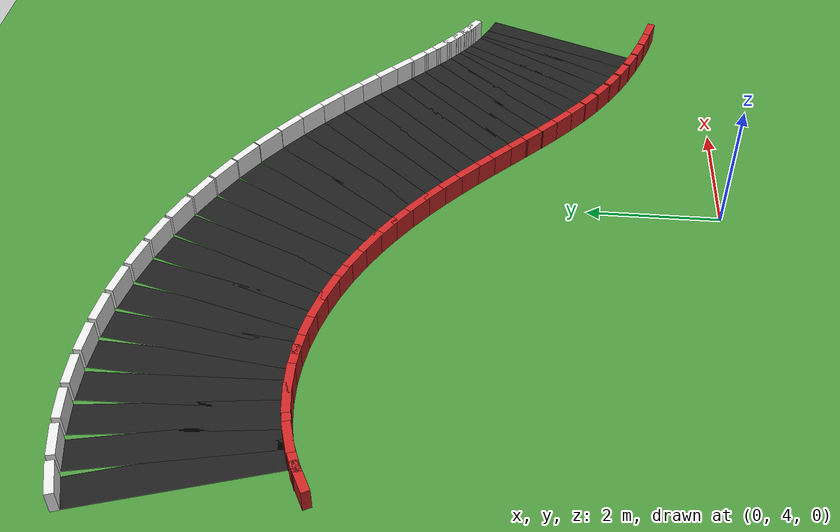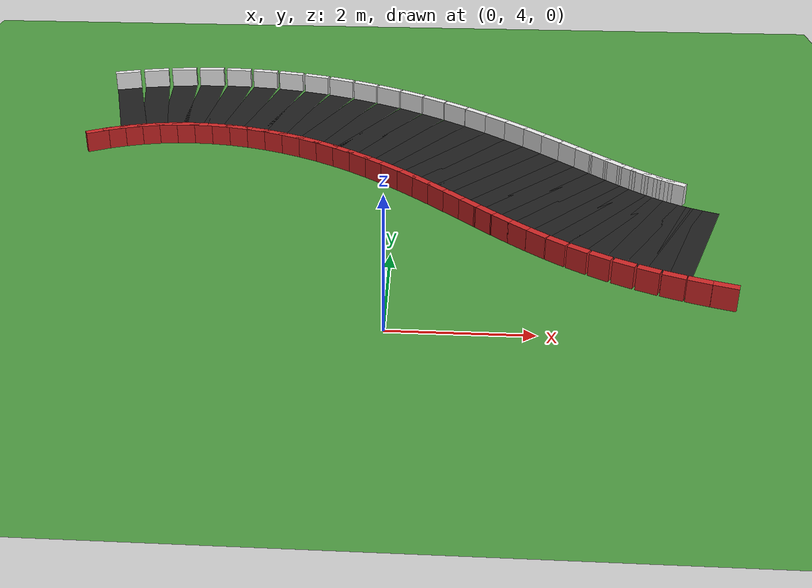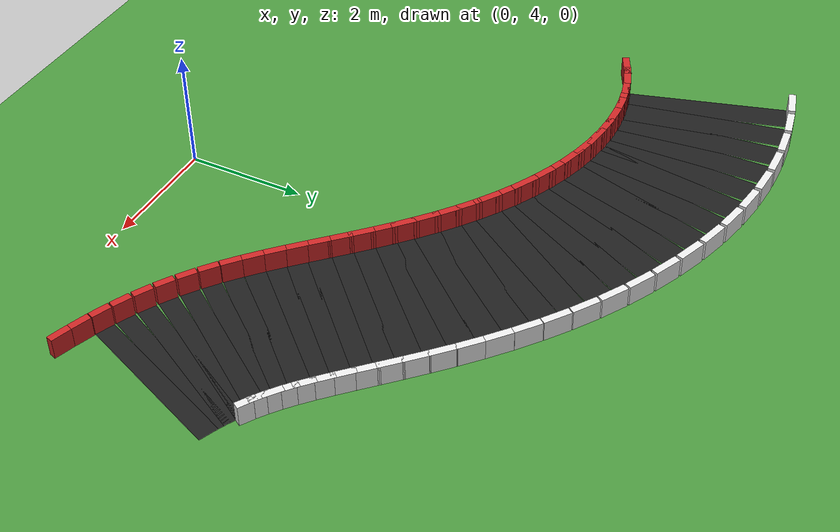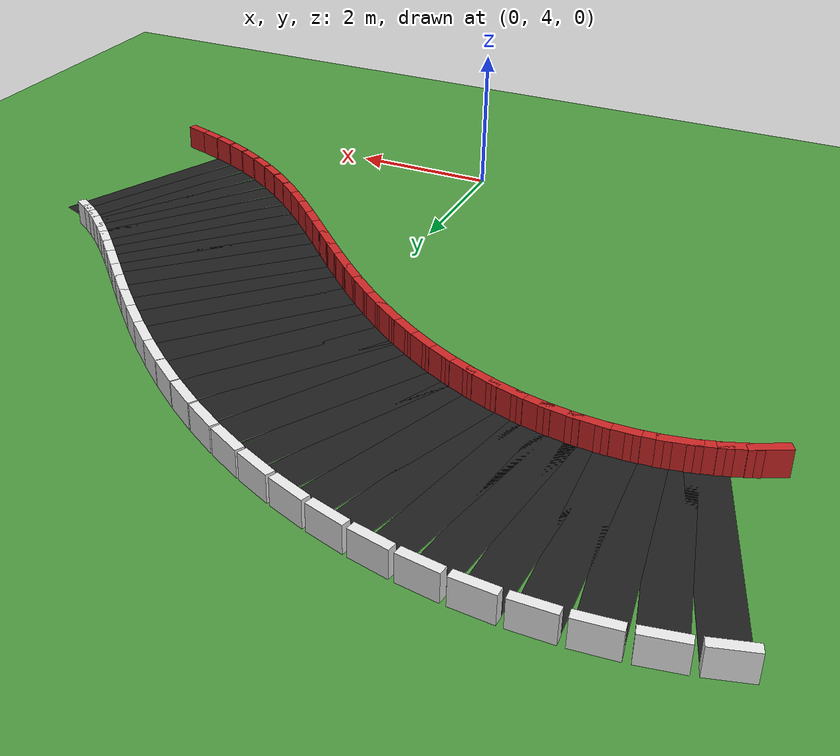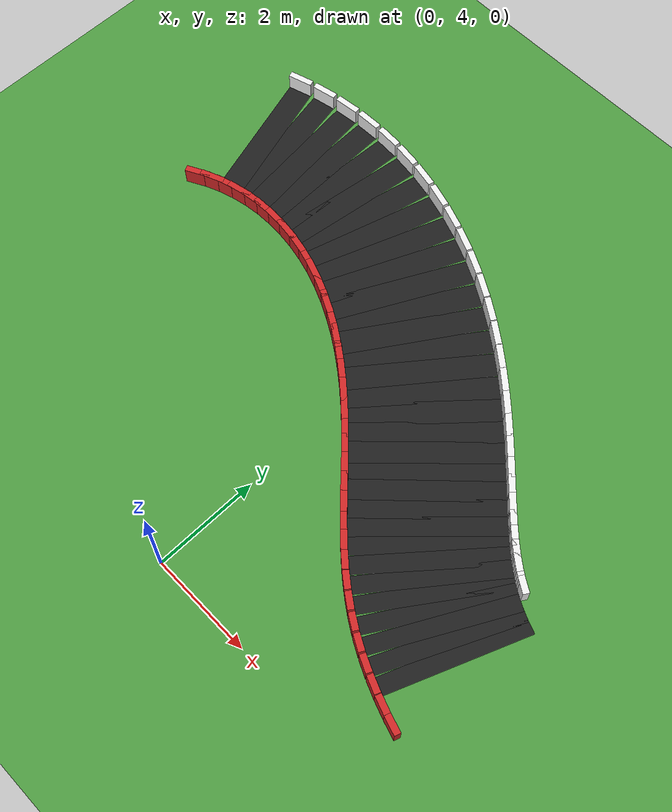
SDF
<sdf version="1.7">
 <world name="rl_track">
  <include><uri>model://sun</uri></include>
  <model name="ground">
   <static>true</static>
   <link name="link">
    <collision name="collision">
     <geometry><plane><normal>0 0 1</normal><size>40 40</size></plane></geometry>
    </collision>
    <visual name="visual">
     <geometry><plane><normal>0 0 1</normal><size>40 40</size></plane></geometry>
     <material>
      <script><uri>file://media/materials/scripts/gazebo.material</uri><name>Gazebo/Grass</name></script>
     </material>
    </visual>
   </link>
  </model>
  <model name="track">
   <static>true</static>
   <link name="outer_wall_025">
    <pose>4.580960 4.834843 0.175000 0 0 2.835922841</pose>
    <collision name="collision">
     <geometry><box><size>0.348349 0.120000 0.350000</size></box></geometry>
     <surface><contact><ode><kp>1000000</kp><kd>10</kd></ode></contact></surface>
    </collision>
    <visual name="visual">
     <geometry><box><size>0.348349 0.120000 0.350000</size></box></geometry>
     <material>
      <script><uri>file://media/materials/scripts/gazebo.material</uri><name>Gazebo/Red</name></script>
     </material>
    </visual>
   </link>
   <link name="outer_wall_026">
    <pose>4.256044 4.943616 0.175000 0 0 2.800612221</pose>
    <collision name="collision">
     <geometry><box><size>0.337451 0.120000 0.350000</size></box></geometry>
     <surface><contact><ode><kp>1000000</kp><kd>10</kd></ode></contact></surface>
    </collision>
    <visual name="visual">
     <geometry><box><size>0.337451 0.120000 0.350000</size></box></geometry>
     <material>
      <script><uri>file://media/materials/scripts/gazebo.material</uri><name>Gazebo/Red</name></script>
     </material>
    </visual>
   </link>
   <link name="road_027">
    <pose>4.463002 6.372880 0.003000 0 0 2.756201164</pose>
    <visual name="visual">
     <geometry><box><size>0.318662 2.700000 0.006000</size></box></geometry>
     <material>
      <script><uri>file://media/materials/scripts/gazebo.material</uri><name>Gazebo/Black</name></script>
     </material>
    </visual>
   </link>
   <link name="outer_wall_027">
    <pose>3.932952 5.066301 0.175000 0 0 2.756201164</pose>
    <collision name="collision">
     <geometry><box><size>0.328662 0.120000 0.350000</size></box></geometry>
     <surface><contact><ode><kp>1000000</kp><kd>10</kd></ode></contact></surface>
    </collision>
    <visual name="visual">
     <geometry><box><size>0.328662 0.120000 0.350000</size></box></geometry>
     <material>
      <script><uri>file://media/materials/scripts/gazebo.material</uri><name>Gazebo/Red</name></script>
     </material>
    </visual>
   </link>
   <link name="road_028">
    <pose>4.210473 6.482956 0.003000 0 0 2.704272586</pose>
    <visual name="visual">
     <geometry><box><size>0.312479 2.700000 0.006000</size></box></geometry>
     <material>
      <script><uri>file://media/materials/scripts/gazebo.material</uri><name>Gazebo/Black</name></script>
     </material>
    </visual>
   </link>
   <link name="outer_wall_028">
    <pose>3.613319 5.205652 0.175000 0 0 2.704272586</pose>
    <collision name="collision">
     <geometry><box><size>0.322479 0.120000 0.350000</size></box></geometry>
     <surface><contact><ode><kp>1000000</kp><kd>10</kd></ode></contact></surface>
    </collision>
    <visual name="visual">
     <geometry><box><size>0.322479 0.120000 0.350000</size></box></geometry>
     <material>
      <script><uri>file://media/materials/scripts/gazebo.material</uri><name>Gazebo/Red</name></script>
     </material>
    </visual>
   </link>
   <link name="road_029">
    <pose>3.968528 6.604526 0.003000 0 0 2.647340339</pose>
    <visual name="visual">
     <geometry><box><size>0.309282 2.700000 0.006000</size></box></geometry>
     <material>
      <script><uri>file://media/materials/scripts/gazebo.material</uri><name>Gazebo/Black</name></script>
     </material>
    </visual>
   </link>
   <link name="outer_wall_029">
    <pose>3.299661 5.363269 0.175000 0 0 2.647340339</pose>
    <collision name="collision">
     <geometry><box><size>0.319282 0.120000 0.350000</size></box></geometry>
     <surface><contact><ode><kp>1000000</kp><kd>10</kd></ode></contact></surface>
    </collision>
    <visual name="visual">
     <geometry><box><size>0.319282 0.120000 0.350000</size></box></geometry>
     <material>
      <script><uri>file://media/materials/scripts/gazebo.material</uri><name>Gazebo/Red</name></script>
     </material>
    </visual>
   </link>
   <link name="road_030">
    <pose>3.735423 6.739108 0.003000 0 0 2.588647417</pose>
    <visual name="visual">
     <geometry><box><size>0.309282 2.700000 0.006000</size></box></geometry>
     <material>
      <script><uri>file://media/materials/scripts/gazebo.material</uri><name>Gazebo/Black</name></script>
     </material>
    </visual>
   </link>
   <link name="inner_wall_030">
    <pose>4.475949 7.938992 0.175000 0 0 2.588647417</pose>
    <collision name="collision">
     <geometry><box><size>0.319282 0.120000 0.350000</size></box></geometry>
     <surface><contact><ode><kp>1000000</kp><kd>10</kd></ode></contact></surface>
    </collision>
    <visual name="visual">
     <geometry><box><size>0.319282 0.120000 0.350000</size></box></geometry>
     <material>
      <script><uri>file://media/materials/scripts/gazebo.material</uri><name>Gazebo/White</name></script>
     </material>
    </visual>
   </link>
   <link name="outer_wall_030">
    <pose>2.994897 5.539225 0.175000 0 0 2.588647417</pose>
    <collision name="collision">
     <geometry><box><size>0.319282 0.120000 0.350000</size></box></geometry>
     <surface><contact><ode><kp>1000000</kp><kd>10</kd></ode></contact></surface>
    </collision>
    <visual name="visual">
     <geometry><box><size>0.319282 0.120000 0.350000</size></box></geometry>
     <material>
      <script><uri>file://media/materials/scripts/gazebo.material</uri><name>Gazebo/Red</name></script>
     </material>
    </visual>
   </link>
   <link name="road_031">
    <pose>3.509168 6.887855 0.003000 0 0 2.531715170</pose>
    <visual name="visual">
     <geometry><box><size>0.312479 2.700000 0.006000</size></box></geometry>
     <material>
      <script><uri>file://media/materials/scripts/gazebo.material</uri><name>Gazebo/Black</name></script>
     </material>
    </visual>
   </link>
   <link name="inner_wall_031">
    <pose>4.316770 8.043657 0.175000 0 0 2.531715170</pose>
    <collision name="collision">
     <geometry><box><size>0.322479 0.120000 0.350000</size></box></geometry>
     <surface><contact><ode><kp>1000000</kp><kd>10</kd></ode></contact></surface>
    </collision>
    <visual name="visual">
     <geometry><box><size>0.322479 0.120000 0.350000</size></box></geometry>
     <material>
      <script><uri>file://media/materials/scripts/gazebo.material</uri><name>Gazebo/White</name></script>
     </material>
    </visual>
   </link>
   <link name="outer_wall_031">
    <pose>2.701567 5.732052 0.175000 0 0 2.531715170</pose>
    <collision name="collision">
     <geometry><box><size>0.322479 0.120000 0.350000</size></box></geometry>
     <surface><contact><ode><kp>1000000</kp><kd>10</kd></ode></contact></surface>
    </collision>
    <visual name="visual">
     <geometry><box><size>0.322479 0.120000 0.350000</size></box></geometry>
     <material>
      <script><uri>file://media/materials/scripts/gazebo.material</uri><name>Gazebo/Red</name></script>
     </material>
    </visual>
   </link>
   <link name="road_032">
    <pose>3.287575 7.051513 0.003000 0 0 2.479786592</pose>
    <visual name="visual">
     <geometry><box><size>0.318662 2.700000 0.006000</size></box></geometry>
     <material>
      <script><uri>file://media/materials/scripts/gazebo.material</uri><name>Gazebo/Black</name></script>
     </material>
    </visual>
   </link>
   <link name="inner_wall_032">
    <pose>4.154080 8.163839 0.175000 0 0 2.479786592</pose>
    <collision name="collision">
     <geometry><box><size>0.328662 0.120000 0.350000</size></box></geometry>
     <surface><contact><ode><kp>1000000</kp><kd>10</kd></ode></contact></surface>
    </collision>
    <visual name="visual">
     <geometry><box><size>0.328662 0.120000 0.350000</size></box></geometry>
     <material>
      <script><uri>file://media/materials/scripts/gazebo.material</uri><name>Gazebo/White</name></script>
     </material>
    </visual>
   </link>
   <link name="outer_wall_032">
    <pose>2.421069 5.939187 0.175000 0 0 2.479786592</pose>
    <collision name="collision">
     <geometry><box><size>0.328662 0.120000 0.350000</size></box></geometry>
     <surface><contact><ode><kp>1000000</kp><kd>10</kd></ode></contact></surface>
    </collision>
    <visual name="visual">
     <geometry><box><size>0.328662 0.120000 0.350000</size></box></geometry>
     <material>
      <script><uri>file://media/materials/scripts/gazebo.material</uri><name>Gazebo/Red</name></script>
     </material>
    </visual>
   </link>
   <link name="road_033">
    <pose>3.068309 7.230410 0.003000 0 0 2.435375534</pose>
    <visual name="visual">
     <geometry><box><size>0.327451 2.700000 0.006000</size></box></geometry>
     <material>
      <script><uri>file://media/materials/scripts/gazebo.material</uri><name>Gazebo/Black</name></script>
     </material>
    </visual>
   </link>
   <link name="inner_wall_033">
    <pose>3.983343 8.303169 0.175000 0 0 2.435375534</pose>
    <collision name="collision">
     <geometry><box><size>0.337451 0.120000 0.350000</size></box></geometry>
     <surface><contact><ode><kp>1000000</kp><kd>10</kd></ode></contact></surface>
    </collision>
    <visual name="visual">
     <geometry><box><size>0.337451 0.120000 0.350000</size></box></geometry>
     <material>
      <script><uri>file://media/materials/scripts/gazebo.material</uri><name>Gazebo/White</name></script>
     </material>
    </visual>
   </link>
   <link name="outer_wall_033">
    <pose>2.153275 6.157651 0.175000 0 0 2.435375534</pose>
    <collision name="collision">
     <geometry><box><size>0.337451 0.120000 0.350000</size></box></geometry>
     <surface><contact><ode><kp>1000000</kp><kd>10</kd></ode></contact></surface>
    </collision>
    <visual name="visual">
     <geometry><box><size>0.337451 0.120000 0.350000</size></box></geometry>
     <material>
      <script><uri>file://media/materials/scripts/gazebo.material</uri><name>Gazebo/Red</name></script>
     </material>
    </visual>
   </link>
   <link name="road_034">
    <pose>2.848953 7.424437 0.003000 0 0 2.400064915</pose>
    <visual name="visual">
     <geometry><box><size>0.338349 2.700000 0.006000</size></box></geometry>
     <material>
      <script><uri>file://media/materials/scripts/gazebo.material</uri><name>Gazebo/Black</name></script>
     </material>
    </visual>
   </link>
   <link name="inner_wall_034">
    <pose>3.801288 8.464224 0.175000 0 0 2.400064915</pose>
    <collision name="collision">
     <geometry><box><size>0.348349 0.120000 0.350000</size></box></geometry>
     <surface><contact><ode><kp>1000000</kp><kd>10</kd></ode></contact></surface>
    </collision>
    <visual name="visual">
     <geometry><box><size>0.348349 0.120000 0.350000</size></box></geometry>
     <material>
      <script><uri>file://media/materials/scripts/gazebo.material</uri><name>Gazebo/White</name></script>
     </material>
    </visual>
   </link>
   <link name="outer_wall_034">
    <pose>1.896617 6.384650 0.175000 0 0 2.400064915</pose>
    <collision name="collision">
     <geometry><box><size>0.348349 0.120000 0.350000</size></box></geometry>
     <surface><contact><ode><kp>1000000</kp><kd>10</kd></ode></contact></surface>
    </collision>
    <visual name="visual">
     <geometry><box><size>0.348349 0.120000 0.350000</size></box></geometry>
     <material>
      <script><uri>file://media/materials/scripts/gazebo.material</uri><name>Gazebo/Red</name></script>
     </material>
    </visual>
   </link>
   <link name="road_035">
    <pose>2.627058 7.633044 0.003000 0 0 2.374555425</pose>
    <visual name="visual">
     <geometry><box><size>0.350813 2.700000 0.006000</size></box></geometry>
     <material>
      <script><uri>file://media/materials/scripts/gazebo.material</uri><name>Gazebo/Black</name></script>
     </material>
    </visual>
   </link>
   <link name="inner_wall_035">
    <pose>3.605605 8.648202 0.175000 0 0 2.374555425</pose>
    <collision name="collision">
     <geometry><box><size>0.360813 0.120000 0.350000</size></box></geometry>
     <surface><contact><ode><kp>1000000</kp><kd>10</kd></ode></contact></surface>
    </collision>
    <visual name="visual">
     <geometry><box><size>0.360813 0.120000 0.350000</size></box></geometry>
     <material>
      <script><uri>file://media/materials/scripts/gazebo.material</uri><name>Gazebo/White</name></script>
     </material>
    </visual>
   </link>
   <link name="outer_wall_035">
    <pose>1.648511 6.617887 0.175000 0 0 2.374555425</pose>
    <collision name="collision">
     <geometry><box><size>0.360813 0.120000 0.350000</size></box></geometry>
     <surface><contact><ode><kp>1000000</kp><kd>10</kd></ode></contact></surface>
    </collision>
    <visual name="visual">
     <geometry><box><size>0.360813 0.120000 0.350000</size></box></geometry>
     <material>
      <script><uri>file://media/materials/scripts/gazebo.material</uri><name>Gazebo/Red</name></script>
     </material>
    </visual>
   </link>
   <link name="road_036">
    <pose>2.400208 7.855247 0.003000 0 0 2.358866287</pose>
    <visual name="visual">
     <geometry><box><size>0.364298 2.700000 0.006000</size></box></geometry>
     <material>
      <script><uri>file://media/materials/scripts/gazebo.material</uri><name>Gazebo/Black</name></script>
     </material>
    </visual>
   </link>
   <link name="inner_wall_036">
    <pose>3.394561 8.854928 0.175000 0 0 2.358866287</pose>
    <collision name="collision">
     <geometry><box><size>0.374298 0.120000 0.350000</size></box></geometry>
     <surface><contact><ode><kp>1000000</kp><kd>10</kd></ode></contact></surface>
    </collision>
    <visual name="visual">
     <geometry><box><size>0.374298 0.120000 0.350000</size></box></geometry>
     <material>
      <script><uri>file://media/materials/scripts/gazebo.material</uri><name>Gazebo/White</name></script>
     </material>
    </visual>
   </link>
   <link name="outer_wall_036">
    <pose>1.405854 6.855566 0.175000 0 0 2.358866287</pose>
    <collision name="collision">
     <geometry><box><size>0.374298 0.120000 0.350000</size></box></geometry>
     <surface><contact><ode><kp>1000000</kp><kd>10</kd></ode></contact></surface>
    </collision>
    <visual name="visual">
     <geometry><box><size>0.374298 0.120000 0.350000</size></box></geometry>
     <material>
      <script><uri>file://media/materials/scripts/gazebo.material</uri><name>Gazebo/Red</name></script>
     </material>
    </visual>
   </link>
   <link name="road_037">
    <pose>2.166073 8.089634 0.003000 0 0 2.352576127</pose>
    <visual name="visual">
     <geometry><box><size>0.378296 2.700000 0.006000</size></box></geometry>
     <material>
      <script><uri>file://media/materials/scripts/gazebo.material</uri><name>Gazebo/Black</name></script>
     </material>
    </visual>
   </link>
   <link name="inner_wall_037">
    <pose>3.166695 9.083041 0.175000 0 0 2.352576127</pose>
    <collision name="collision">
     <geometry><box><size>0.388296 0.120000 0.350000</size></box></geometry>
     <surface><contact><ode><kp>1000000</kp><kd>10</kd></ode></contact></surface>
    </collision>
    <visual name="visual">
     <geometry><box><size>0.388296 0.120000 0.350000</size></box></geometry>
     <material>
      <script><uri>file://media/materials/scripts/gazebo.material</uri><name>Gazebo/White</name></script>
     </material>
    </visual>
   </link>
   <link name="outer_wall_037">
    <pose>1.165451 7.096228 0.175000 0 0 2.352576127</pose>
    <collision name="collision">
     <geometry><box><size>0.388296 0.120000 0.350000</size></box></geometry>
     <surface><contact><ode><kp>1000000</kp><kd>10</kd></ode></contact></surface>
    </collision>
    <visual name="visual">
     <geometry><box><size>0.388296 0.120000 0.350000</size></box></geometry>
     <material>
      <script><uri>file://media/materials/scripts/gazebo.material</uri><name>Gazebo/Red</name></script>
     </material>
    </visual>
   </link>
   <link name="road_038">
    <pose>1.922470 8.334392 0.003000 0 0 2.355031887</pose>
    <visual name="visual">
     <geometry><box><size>0.392353 2.700000 0.006000</size></box></geometry>
     <material>
      <script><uri>file://media/materials/scripts/gazebo.material</uri><name>Gazebo/Black</name></script>
     </material>
    </visual>
   </link>
   <link name="inner_wall_038">
    <pose>2.920649 9.330253 0.175000 0 0 2.355031887</pose>
    <collision name="collision">
     <geometry><box><size>0.402353 0.120000 0.350000</size></box></geometry>
     <surface><contact><ode><kp>1000000</kp><kd>10</kd></ode></contact></surface>
    </collision>
    <visual name="visual">
     <geometry><box><size>0.402353 0.120000 0.350000</size></box></geometry>
     <material>
      <script><uri>file://media/materials/scripts/gazebo.material</uri><name>Gazebo/White</name></script>
     </material>
    </visual>
   </link>
   <link name="outer_wall_038">
    <pose>0.924291 7.338531 0.175000 0 0 2.355031887</pose>
    <collision name="collision">
     <geometry><box><size>0.402353 0.120000 0.350000</size></box></geometry>
     <surface><contact><ode><kp>1000000</kp><kd>10</kd></ode></contact></surface>
    </collision>
    <visual name="visual">
     <geometry><box><size>0.402353 0.120000 0.350000</size></box></geometry>
     <material>
      <script><uri>file://media/materials/scripts/gazebo.material</uri><name>Gazebo/Red</name></script>
     </material>
    </visual>
   </link>
   <link name="road_039">
    <pose>1.667413 8.587330 0.003000 0 0 2.365499334</pose>
    <visual name="visual">
     <geometry><box><size>0.406078 2.700000 0.006000</size></box></geometry>
     <material>
      <script><uri>file://media/materials/scripts/gazebo.material</uri><name>Gazebo/Black</name></script>
     </material>
    </visual>
   </link>
   <link name="inner_wall_039">
    <pose>2.655114 9.593585 0.175000 0 0 2.365499334</pose>
    <collision name="collision">
     <geometry><box><size>0.416078 0.120000 0.350000</size></box></geometry>
     <surface><contact><ode><kp>1000000</kp><kd>10</kd></ode></contact></surface>
    </collision>
    <visual name="visual">
     <geometry><box><size>0.416078 0.120000 0.350000</size></box></geometry>
     <material>
      <script><uri>file://media/materials/scripts/gazebo.material</uri><name>Gazebo/White</name></script>
     </material>
    </visual>
   </link>
   <link name="outer_wall_039">
    <pose>0.679713 7.581076 0.175000 0 0 2.365499334</pose>
    <collision name="collision">
     <geometry><box><size>0.416078 0.120000 0.350000</size></box></geometry>
     <surface><contact><ode><kp>1000000</kp><kd>10</kd></ode></contact></surface>
    </collision>
    <visual name="visual">
     <geometry><box><size>0.416078 0.120000 0.350000</size></box></geometry>
     <material>
      <script><uri>file://media/materials/scripts/gazebo.material</uri><name>Gazebo/Red</name></script>
     </material>
    </visual>
   </link>
   <link name="road_040">
    <pose>1.399161 8.845920 0.003000 0 0 2.383257346</pose>
    <visual name="visual">
     <geometry><box><size>0.419143 2.700000 0.006000</size></box></geometry>
     <material>
      <script><uri>file://media/materials/scripts/gazebo.material</uri><name>Gazebo/Black</name></script>
     </material>
    </visual>
   </link>
   <link name="inner_wall_040">
    <pose>2.368837 9.869554 0.175000 0 0 2.383257346</pose>
    <collision name="collision">
     <geometry><box><size>0.429143 0.120000 0.350000</size></box></geometry>
     <surface><contact><ode><kp>1000000</kp><kd>10</kd></ode></contact></surface>
    </collision>
    <visual name="visual">
     <geometry><box><size>0.429143 0.120000 0.350000</size></box></geometry>
     <material>
      <script><uri>file://media/materials/scripts/gazebo.material</uri><name>Gazebo/White</name></script>
     </material>
    </visual>
   </link>
   <link name="outer_wall_040">
    <pose>0.429484 7.822285 0.175000 0 0 2.383257346</pose>
    <collision name="collision">
     <geometry><box><size>0.429143 0.120000 0.350000</size></box></geometry>
     <surface><contact><ode><kp>1000000</kp><kd>10</kd></ode></contact></surface>
    </collision>
    <visual name="visual">
     <geometry><box><size>0.429143 0.120000 0.350000</size></box></geometry>
     <material>
      <script><uri>file://media/materials/scripts/gazebo.material</uri><name>Gazebo/Red</name></script>
     </material>
    </visual>
   </link>
   <link name="road_041">
    <pose>1.116264 9.107332 0.003000 0 0 2.407649335</pose>
    <visual name="visual">
     <geometry><box><size>0.431283 2.700000 0.006000</size></box></geometry>
     <material>
      <script><uri>file://media/materials/scripts/gazebo.material</uri><name>Gazebo/Black</name></script>
     </material>
    </visual>
   </link>
   <link name="inner_wall_041">
    <pose>2.060686 10.154312 0.175000 0 0 2.407649335</pose>
    <collision name="collision">
     <geometry><box><size>0.441283 0.120000 0.350000</size></box></geometry>
     <surface><contact><ode><kp>1000000</kp><kd>10</kd></ode></contact></surface>
    </collision>
    <visual name="visual">
     <geometry><box><size>0.441283 0.120000 0.350000</size></box></geometry>
     <material>
      <script><uri>file://media/materials/scripts/gazebo.material</uri><name>Gazebo/White</name></script>
     </material>
    </visual>
   </link>
   <link name="outer_wall_041">
    <pose>0.171842 8.060352 0.175000 0 0 2.407649335</pose>
    <collision name="collision">
     <geometry><box><size>0.441283 0.120000 0.350000</size></box></geometry>
     <surface><contact><ode><kp>1000000</kp><kd>10</kd></ode></contact></surface>
    </collision>
    <visual name="visual">
     <geometry><box><size>0.441283 0.120000 0.350000</size></box></geometry>
     <material>
      <script><uri>file://media/materials/scripts/gazebo.material</uri><name>Gazebo/Red</name></script>
     </material>
    </visual>
   </link>
   <link name="road_042">
    <pose>0.817600 9.368491 0.003000 0 0 2.438106077</pose>
    <visual name="visual">
     <geometry><box><size>0.442292 2.700000 0.006000</size></box></geometry>
     <material>
      <script><uri>file://media/materials/scripts/gazebo.material</uri><name>Gazebo/Black</name></script>
     </material>
    </visual>
   </link>
   <link name="inner_wall_042">
    <pose>1.729701 10.443745 0.175000 0 0 2.438106077</pose>
    <collision name="collision">
     <geometry><box><size>0.452292 0.120000 0.350000</size></box></geometry>
     <surface><contact><ode><kp>1000000</kp><kd>10</kd></ode></contact></surface>
    </collision>
    <visual name="visual">
     <geometry><box><size>0.452292 0.120000 0.350000</size></box></geometry>
     <material>
      <script><uri>file://media/materials/scripts/gazebo.material</uri><name>Gazebo/White</name></script>
     </material>
    </visual>
   </link>
   <link name="outer_wall_042">
    <pose>-0.094502 8.293237 0.175000 0 0 2.438106077</pose>
    <collision name="collision">
     <geometry><box><size>0.452292 0.120000 0.350000</size></box></geometry>
     <surface><contact><ode><kp>1000000</kp><kd>10</kd></ode></contact></surface>
    </collision>
    <visual name="visual">
     <geometry><box><size>0.452292 0.120000 0.350000</size></box></geometry>
     <material>
      <script><uri>file://media/materials/scripts/gazebo.material</uri><name>Gazebo/Red</name></script>
     </material>
    </visual>
   </link>
   <link name="road_043">
    <pose>0.502406 9.626124 0.003000 0 0 2.474151191</pose>
    <visual name="visual">
     <geometry><box><size>0.452019 2.700000 0.006000</size></box></geometry>
     <material>
      <script><uri>file://media/materials/scripts/gazebo.material</uri><name>Gazebo/Black</name></script>
     </material>
    </visual>
   </link>
   <link name="inner_wall_043">
    <pose>1.375166 10.733549 0.175000 0 0 2.474151191</pose>
    <collision name="collision">
     <geometry><box><size>0.462019 0.120000 0.350000</size></box></geometry>
     <surface><contact><ode><kp>1000000</kp><kd>10</kd></ode></contact></surface>
    </collision>
    <visual name="visual">
     <geometry><box><size>0.462019 0.120000 0.350000</size></box></geometry>
     <material>
      <script><uri>file://media/materials/scripts/gazebo.material</uri><name>Gazebo/White</name></script>
     </material>
    </visual>
   </link>
   <link name="outer_wall_043">
    <pose>-0.370354 8.518699 0.175000 0 0 2.474151191</pose>
    <collision name="collision">
     <geometry><box><size>0.462019 0.120000 0.350000</size></box></geometry>
     <surface><contact><ode><kp>1000000</kp><kd>10</kd></ode></contact></surface>
    </collision>
    <visual name="visual">
     <geometry><box><size>0.462019 0.120000 0.350000</size></box></geometry>
     <material>
      <script><uri>file://media/materials/scripts/gazebo.material</uri><name>Gazebo/Red</name></script>
     </material>
    </visual>
   </link>
   <link name="road_044">
    <pose>0.170302 9.876820 0.003000 0 0 2.515396880</pose>
    <visual name="visual">
     <geometry><box><size>0.460363 2.700000 0.006000</size></box></geometry>
     <material>
      <script><uri>file://media/materials/scripts/gazebo.material</uri><name>Gazebo/Black</name></script>
     </material>
    </visual>
   </link>
   <link name="inner_wall_044">
    <pose>0.996656 11.019290 0.175000 0 0 2.515396880</pose>
    <collision name="collision">
     <geometry><box><size>0.470363 0.120000 0.350000</size></box></geometry>
     <surface><contact><ode><kp>1000000</kp><kd>10</kd></ode></contact></surface>
    </collision>
    <visual name="visual">
     <geometry><box><size>0.470363 0.120000 0.350000</size></box></geometry>
     <material>
      <script><uri>file://media/materials/scripts/gazebo.material</uri><name>Gazebo/White</name></script>
     </material>
    </visual>
   </link>
   <link name="outer_wall_044">
    <pose>-0.656052 8.734349 0.175000 0 0 2.515396880</pose>
    <collision name="collision">
     <geometry><box><size>0.470363 0.120000 0.350000</size></box></geometry>
     <surface><contact><ode><kp>1000000</kp><kd>10</kd></ode></contact></surface>
    </collision>
    <visual name="visual">
     <geometry><box><size>0.470363 0.120000 0.350000</size></box></geometry>
     <material>
      <script><uri>file://media/materials/scripts/gazebo.material</uri><name>Gazebo/Red</name></script>
     </material>
    </visual>
   </link>
   <link name="road_045">
    <pose>-0.178693 10.117089 0.003000 0 0 2.561534553</pose>
    <visual name="visual">
     <geometry><box><size>0.467274 2.700000 0.006000</size></box></geometry>
     <material>
      <script><uri>file://media/materials/scripts/gazebo.material</uri><name>Gazebo/Black</name></script>
     </material>
    </visual>
   </link>
   <link name="inner_wall_045">
    <pose>0.594090 11.296456 0.175000 0 0 2.561534553</pose>
    <collision name="collision">
     <geometry><box><size>0.477274 0.120000 0.350000</size></box></geometry>
     <surface><contact><ode><kp>1000000</kp><kd>10</kd></ode></contact></surface>
    </collision>
    <visual name="visual">
     <geometry><box><size>0.477274 0.120000 0.350000</size></box></geometry>
     <material>
      <script><uri>file://media/materials/scripts/gazebo.material</uri><name>Gazebo/White</name></script>
     </material>
    </visual>
   </link>
   <link name="outer_wall_045">
    <pose>-0.951475 8.937721 0.175000 0 0 2.561534553</pose>
    <collision name="collision">
     <geometry><box><size>0.477274 0.120000 0.350000</size></box></geometry>
     <surface><contact><ode><kp>1000000</kp><kd>10</kd></ode></contact></surface>
    </collision>
    <visual name="visual">
     <geometry><box><size>0.477274 0.120000 0.350000</size></box></geometry>
     <material>
      <script><uri>file://media/materials/scripts/gazebo.material</uri><name>Gazebo/Red</name></script>
     </material>
    </visual>
   </link>
   <link name="road_046">
    <pose>-0.544154 10.343425 0.003000 0 0 2.612322925</pose>
    <visual name="visual">
     <geometry><box><size>0.472747 2.700000 0.006000</size></box></geometry>
     <material>
      <script><uri>file://media/materials/scripts/gazebo.material</uri><name>Gazebo/Black</name></script>
     </material>
    </visual>
   </link>
   <link name="inner_wall_046">
    <pose>0.167760 11.560503 0.175000 0 0 2.612322925</pose>
    <collision name="collision">
     <geometry><box><size>0.482747 0.120000 0.350000</size></box></geometry>
     <surface><contact><ode><kp>1000000</kp><kd>10</kd></ode></contact></surface>
    </collision>
    <visual name="visual">
     <geometry><box><size>0.482747 0.120000 0.350000</size></box></geometry>
     <material>
      <script><uri>file://media/materials/scripts/gazebo.material</uri><name>Gazebo/White</name></script>
     </material>
    </visual>
   </link>
   <link name="outer_wall_046">
    <pose>-1.256067 9.126347 0.175000 0 0 2.612322925</pose>
    <collision name="collision">
     <geometry><box><size>0.482747 0.120000 0.350000</size></box></geometry>
     <surface><contact><ode><kp>1000000</kp><kd>10</kd></ode></contact></surface>
    </collision>
    <visual name="visual">
     <geometry><box><size>0.482747 0.120000 0.350000</size></box></geometry>
     <material>
      <script><uri>file://media/materials/scripts/gazebo.material</uri><name>Gazebo/Red</name></script>
     </material>
    </visual>
   </link>
   <link name="road_047">
    <pose>-0.925250 10.552369 0.003000 0 0 2.667574814</pose>
    <visual name="visual">
     <geometry><box><size>0.476818 2.700000 0.006000</size></box></geometry>
     <material>
      <script><uri>file://media/materials/scripts/gazebo.material</uri><name>Gazebo/Black</name></script>
     </material>
    </visual>
   </link>
   <link name="inner_wall_047">
    <pose>-0.281634 11.806904 0.175000 0 0 2.667574814</pose>
    <collision name="collision">
     <geometry><box><size>0.486818 0.120000 0.350000</size></box></geometry>
     <surface><contact><ode><kp>1000000</kp><kd>10</kd></ode></contact></surface>
    </collision>
    <visual name="visual">
     <geometry><box><size>0.486818 0.120000 0.350000</size></box></geometry>
     <material>
      <script><uri>file://media/materials/scripts/gazebo.material</uri><name>Gazebo/White</name></script>
     </material>
    </visual>
   </link>
   <link name="outer_wall_047">
    <pose>-1.568865 9.297833 0.175000 0 0 2.667574814</pose>
    <collision name="collision">
     <geometry><box><size>0.486818 0.120000 0.350000</size></box></geometry>
     <surface><contact><ode><kp>1000000</kp><kd>10</kd></ode></contact></surface>
    </collision>
    <visual name="visual">
     <geometry><box><size>0.486818 0.120000 0.350000</size></box></geometry>
     <material>
      <script><uri>file://media/materials/scripts/gazebo.material</uri><name>Gazebo/Red</name></script>
     </material>
    </visual>
   </link>
   <link name="road_048">
    <pose>-1.320752 10.740568 0.003000 0 0 2.727143126</pose>
    <visual name="visual">
     <geometry><box><size>0.479564 2.700000 0.006000</size></box></geometry>
     <material>
      <script><uri>file://media/materials/scripts/gazebo.material</uri><name>Gazebo/Black</name></script>
     </material>
    </visual>
   </link>
   <link name="inner_wall_048">
    <pose>-0.752964 12.031194 0.175000 0 0 2.727143126</pose>
    <collision name="collision">
     <geometry><box><size>0.489564 0.120000 0.350000</size></box></geometry>
     <surface><contact><ode><kp>1000000</kp><kd>10</kd></ode></contact></surface>
    </collision>
    <visual name="visual">
     <geometry><box><size>0.489564 0.120000 0.350000</size></box></geometry>
     <material>
      <script><uri>file://media/materials/scripts/gazebo.material</uri><name>Gazebo/White</name></script>
     </material>
    </visual>
   </link>
   <link name="outer_wall_048">
    <pose>-1.888539 9.449941 0.175000 0 0 2.727143126</pose>
    <collision name="collision">
     <geometry><box><size>0.489564 0.120000 0.350000</size></box></geometry>
     <surface><contact><ode><kp>1000000</kp><kd>10</kd></ode></contact></surface>
    </collision>
    <visual name="visual">
     <geometry><box><size>0.489564 0.120000 0.350000</size></box></geometry>
     <material>
      <script><uri>file://media/materials/scripts/gazebo.material</uri><name>Gazebo/Red</name></script>
     </material>
    </visual>
   </link>
   <link name="road_049">
    <pose>-1.729052 10.904839 0.003000 0 0 2.790906066</pose>
    <visual name="visual">
     <geometry><box><size>0.481097 2.700000 0.006000</size></box></geometry>
     <material>
      <script><uri>file://media/materials/scripts/gazebo.material</uri><name>Gazebo/Black</name></script>
     </material>
    </visual>
   </link>
   <link name="inner_wall_049">
    <pose>-1.244657 12.229022 0.175000 0 0 2.790906066</pose>
    <collision name="collision">
     <geometry><box><size>0.491097 0.120000 0.350000</size></box></geometry>
     <surface><contact><ode><kp>1000000</kp><kd>10</kd></ode></contact></surface>
    </collision>
    <visual name="visual">
     <geometry><box><size>0.491097 0.120000 0.350000</size></box></geometry>
     <material>
      <script><uri>file://media/materials/scripts/gazebo.material</uri><name>Gazebo/White</name></script>
     </material>
    </visual>
   </link>
   <link name="outer_wall_049">
    <pose>-2.213447 9.580655 0.175000 0 0 2.790906066</pose>
    <collision name="collision">
     <geometry><box><size>0.491097 0.120000 0.350000</size></box></geometry>
     <surface><contact><ode><kp>1000000</kp><kd>10</kd></ode></contact></surface>
    </collision>
    <visual name="visual">
     <geometry><box><size>0.491097 0.120000 0.350000</size></box></geometry>
     <material>
      <script><uri>file://media/materials/scripts/gazebo.material</uri><name>Gazebo/Red</name></script>
     </material>
    </visual>
   </link>
   <link name="road_050">
    <pose>-2.148186 11.042223 0.003000 0 0 2.858751493</pose>
    <visual name="visual">
     <geometry><box><size>0.481562 2.700000 0.006000</size></box></geometry>
     <material>
      <script><uri>file://media/materials/scripts/gazebo.material</uri><name>Gazebo/Black</name></script>
     </material>
    </visual>
   </link>
   <link name="inner_wall_050">
    <pose>-1.754676 12.396199 0.175000 0 0 2.858751493</pose>
    <collision name="collision">
     <geometry><box><size>0.491562 0.120000 0.350000</size></box></geometry>
     <surface><contact><ode><kp>1000000</kp><kd>10</kd></ode></contact></surface>
    </collision>
    <visual name="visual">
     <geometry><box><size>0.491562 0.120000 0.350000</size></box></geometry>
     <material>
      <script><uri>file://media/materials/scripts/gazebo.material</uri><name>Gazebo/White</name></script>
     </material>
    </visual>
   </link>
   <link name="outer_wall_050">
    <pose>-2.541695 9.688247 0.175000 0 0 2.858751493</pose>
    <collision name="collision">
     <geometry><box><size>0.491562 0.120000 0.350000</size></box></geometry>
     <surface><contact><ode><kp>1000000</kp><kd>10</kd></ode></contact></surface>
    </collision>
    <visual name="visual">
     <geometry><box><size>0.491562 0.120000 0.350000</size></box></geometry>
     <material>
      <script><uri>file://media/materials/scripts/gazebo.material</uri><name>Gazebo/Red</name></script>
     </material>
    </visual>
   </link>
   <link name="road_051">
    <pose>-2.575865 11.150041 0.003000 0 0 2.930560367</pose>
    <visual name="visual">
     <geometry><box><size>0.481129 2.700000 0.006000</size></box></geometry>
     <material>
      <script><uri>file://media/materials/scripts/gazebo.material</uri><name>Gazebo/Black</name></script>
     </material>
    </visual>
   </link>
   <link name="inner_wall_051">
    <pose>-2.280514 12.528761 0.175000 0 0 2.930560367</pose>
    <collision name="collision">
     <geometry><box><size>0.491129 0.120000 0.350000</size></box></geometry>
     <surface><contact><ode><kp>1000000</kp><kd>10</kd></ode></contact></surface>
    </collision>
    <visual name="visual">
     <geometry><box><size>0.491129 0.120000 0.350000</size></box></geometry>
     <material>
      <script><uri>file://media/materials/scripts/gazebo.material</uri><name>Gazebo/White</name></script>
     </material>
    </visual>
   </link>
   <link name="outer_wall_051">
    <pose>-2.871217 9.771322 0.175000 0 0 2.930560367</pose>
    <collision name="collision">
     <geometry><box><size>0.491129 0.120000 0.350000</size></box></geometry>
     <surface><contact><ode><kp>1000000</kp><kd>10</kd></ode></contact></surface>
    </collision>
    <visual name="visual">
     <geometry><box><size>0.491129 0.120000 0.350000</size></box></geometry>
     <material>
      <script><uri>file://media/materials/scripts/gazebo.material</uri><name>Gazebo/Red</name></script>
     </material>
    </visual>
   </link>
   <link name="road_052">
    <pose>-3.009519 11.225940 0.003000 0 0 3.006189476</pose>
    <visual name="visual">
     <geometry><box><size>0.479992 2.700000 0.006000</size></box></geometry>
     <material>
      <script><uri>file://media/materials/scripts/gazebo.material</uri><name>Gazebo/Black</name></script>
     </material>
    </visual>
   </link>
   <link name="inner_wall_052">
    <pose>-2.819184 12.623034 0.175000 0 0 3.006189476</pose>
    <collision name="collision">
     <geometry><box><size>0.489992 0.120000 0.350000</size></box></geometry>
     <surface><contact><ode><kp>1000000</kp><kd>10</kd></ode></contact></surface>
    </collision>
    <visual name="visual">
     <geometry><box><size>0.489992 0.120000 0.350000</size></box></geometry>
     <material>
      <script><uri>file://media/materials/scripts/gazebo.material</uri><name>Gazebo/White</name></script>
     </material>
    </visual>
   </link>
   <link name="outer_wall_052">
    <pose>-3.199855 9.828846 0.175000 0 0 3.006189476</pose>
    <collision name="collision">
     <geometry><box><size>0.489992 0.120000 0.350000</size></box></geometry>
     <surface><contact><ode><kp>1000000</kp><kd>10</kd></ode></contact></surface>
    </collision>
    <visual name="visual">
     <geometry><box><size>0.489992 0.120000 0.350000</size></box></geometry>
     <material>
      <script><uri>file://media/materials/scripts/gazebo.material</uri><name>Gazebo/Red</name></script>
     </material>
    </visual>
   </link>
   <link name="road_053">
    <pose>-3.446336 11.267935 0.003000 0 0 3.085454000</pose>
    <visual name="visual">
     <geometry><box><size>0.478358 2.700000 0.006000</size></box></geometry>
     <material>
      <script><uri>file://media/materials/scripts/gazebo.material</uri><name>Gazebo/Black</name></script>
     </material>
    </visual>
   </link>
   <link name="inner_wall_053">
    <pose>-3.367222 12.675714 0.175000 0 0 3.085454000</pose>
    <collision name="collision">
     <geometry><box><size>0.488358 0.120000 0.350000</size></box></geometry>
     <surface><contact><ode><kp>1000000</kp><kd>10</kd></ode></contact></surface>
    </collision>
    <visual name="visual">
     <geometry><box><size>0.488358 0.120000 0.350000</size></box></geometry>
     <material>
      <script><uri>file://media/materials/scripts/gazebo.material</uri><name>Gazebo/White</name></script>
     </material>
    </visual>
   </link>
   <link name="outer_wall_053">
    <pose>-3.525450 9.860156 0.175000 0 0 3.085454000</pose>
    <collision name="collision">
     <geometry><box><size>0.488358 0.120000 0.350000</size></box></geometry>
     <surface><contact><ode><kp>1000000</kp><kd>10</kd></ode></contact></surface>
    </collision>
    <visual name="visual">
     <geometry><box><size>0.488358 0.120000 0.350000</size></box></geometry>
     <material>
      <script><uri>file://media/materials/scripts/gazebo.material</uri><name>Gazebo/Red</name></script>
     </material>
    </visual>
   </link>
   <link name="road_054">
    <pose>-3.883314 11.274447 0.003000 0 0 -3.115074321</pose>
    <visual name="visual">
     <geometry><box><size>0.476441 2.700000 0.006000</size></box></geometry>
     <material>
      <script><uri>file://media/materials/scripts/gazebo.material</uri><name>Gazebo/Black</name></script>
     </material>
    </visual>
   </link>
   <link name="inner_wall_054">
    <pose>-3.920700 12.683951 0.175000 0 0 -3.115074321</pose>
    <collision name="collision">
     <geometry><box><size>0.486441 0.120000 0.350000</size></box></geometry>
     <surface><contact><ode><kp>1000000</kp><kd>10</kd></ode></contact></surface>
    </collision>
    <visual name="visual">
     <geometry><box><size>0.486441 0.120000 0.350000</size></box></geometry>
     <material>
      <script><uri>file://media/materials/scripts/gazebo.material</uri><name>Gazebo/White</name></script>
     </material>
    </visual>
   </link>
   <link name="outer_wall_054">
    <pose>-3.845927 9.864943 0.175000 0 0 -3.115074321</pose>
    <collision name="collision">
     <geometry><box><size>0.486441 0.120000 0.350000</size></box></geometry>
     <surface><contact><ode><kp>1000000</kp><kd>10</kd></ode></contact></surface>
    </collision>
    <visual name="visual">
     <geometry><box><size>0.486441 0.120000 0.350000</size></box></geometry>
     <material>
      <script><uri>file://media/materials/scripts/gazebo.material</uri><name>Gazebo/Red</name></script>
     </material>
    </visual>
   </link>
   <link name="road_055">
    <pose>-4.317315 11.244328 0.003000 0 0 -3.029339993</pose>
    <visual name="visual">
     <geometry><box><size>0.474449 2.700000 0.006000</size></box></geometry>
     <material>
      <script><uri>file://media/materials/scripts/gazebo.material</uri><name>Gazebo/Black</name></script>
     </material>
    </visual>
   </link>
   <link name="inner_wall_055">
    <pose>-4.475259 12.645454 0.175000 0 0 -3.029339993</pose>
    <collision name="collision">
     <geometry><box><size>0.484449 0.120000 0.350000</size></box></geometry>
     <surface><contact><ode><kp>1000000</kp><kd>10</kd></ode></contact></surface>
    </collision>
    <visual name="visual">
     <geometry><box><size>0.484449 0.120000 0.350000</size></box></geometry>
     <material>
      <script><uri>file://media/materials/scripts/gazebo.material</uri><name>Gazebo/White</name></script>
     </material>
    </visual>
   </link>
   <link name="outer_wall_055">
    <pose>-4.159371 9.843202 0.175000 0 0 -3.029339993</pose>
    <collision name="collision">
     <geometry><box><size>0.484449 0.120000 0.350000</size></box></geometry>
     <surface><contact><ode><kp>1000000</kp><kd>10</kd></ode></contact></surface>
    </collision>
    <visual name="visual">
     <geometry><box><size>0.484449 0.120000 0.350000</size></box></geometry>
     <material>
      <script><uri>file://media/materials/scripts/gazebo.material</uri><name>Gazebo/Red</name></script>
     </material>
    </visual>
   </link>
   <link name="road_056">
    <pose>-4.745123 11.176883 0.003000 0 0 -2.940925175</pose>
    <visual name="visual">
     <geometry><box><size>0.472582 2.700000 0.006000</size></box></geometry>
     <material>
      <script><uri>file://media/materials/scripts/gazebo.material</uri><name>Gazebo/Black</name></script>
     </material>
    </visual>
   </link>
   <link name="inner_wall_056">
    <pose>-5.026169 12.558590 0.175000 0 0 -2.940925175</pose>
    <collision name="collision">
     <geometry><box><size>0.482582 0.120000 0.350000</size></box></geometry>
     <surface><contact><ode><kp>1000000</kp><kd>10</kd></ode></contact></surface>
    </collision>
    <visual name="visual">
     <geometry><box><size>0.482582 0.120000 0.350000</size></box></geometry>
     <material>
      <script><uri>file://media/materials/scripts/gazebo.material</uri><name>Gazebo/White</name></script>
     </material>
    </visual>
   </link>
   <link name="outer_wall_056">
    <pose>-4.464077 9.795177 0.175000 0 0 -2.940925175</pose>
    <collision name="collision">
     <geometry><box><size>0.482582 0.120000 0.350000</size></box></geometry>
     <surface><contact><ode><kp>1000000</kp><kd>10</kd></ode></contact></surface>
    </collision>
    <visual name="visual">
     <geometry><box><size>0.482582 0.120000 0.350000</size></box></geometry>
     <material>
      <script><uri>file://media/materials/scripts/gazebo.material</uri><name>Gazebo/Red</name></script>
     </material>
    </visual>
   </link>
   <link name="road_057">
    <pose>-5.163503 11.071882 0.003000 0 0 -2.850311428</pose>
    <visual name="visual">
     <geometry><box><size>0.471014 2.700000 0.006000</size></box></geometry>
     <material>
      <script><uri>file://media/materials/scripts/gazebo.material</uri><name>Gazebo/Black</name></script>
     </material>
    </visual>
   </link>
   <link name="inner_wall_057">
    <pose>-5.568427 12.422488 0.175000 0 0 -2.850311428</pose>
    <collision name="collision">
     <geometry><box><size>0.481014 0.120000 0.350000</size></box></geometry>
     <surface><contact><ode><kp>1000000</kp><kd>10</kd></ode></contact></surface>
    </collision>
    <visual name="visual">
     <geometry><box><size>0.481014 0.120000 0.350000</size></box></geometry>
     <material>
      <script><uri>file://media/materials/scripts/gazebo.material</uri><name>Gazebo/White</name></script>
     </material>
    </visual>
   </link>
   <link name="outer_wall_057">
    <pose>-4.758580 9.721276 0.175000 0 0 -2.850311428</pose>
    <collision name="collision">
     <geometry><box><size>0.481014 0.120000 0.350000</size></box></geometry>
     <surface><contact><ode><kp>1000000</kp><kd>10</kd></ode></contact></surface>
    </collision>
    <visual name="visual">
     <geometry><box><size>0.481014 0.120000 0.350000</size></box></geometry>
     <material>
      <script><uri>file://media/materials/scripts/gazebo.material</uri><name>Gazebo/Red</name></script>
     </material>
    </visual>
   </link>
   <link name="outer_wall_058">
    <pose>-5.041638 9.622000 0.175000 0 0 -2.758059784</pose>
    <collision name="collision">
     <geometry><box><size>0.479884 0.120000 0.350000</size></box></geometry>
     <surface><contact><ode><kp>1000000</kp><kd>10</kd></ode></contact></surface>
    </collision>
    <visual name="visual">
     <geometry><box><size>0.479884 0.120000 0.350000</size></box></geometry>
     <material>
      <script><uri>file://media/materials/scripts/gazebo.material</uri><name>Gazebo/Red</name></script>
     </material>
    </visual>
   </link>
   <link name="outer_wall_059">
    <pose>-5.312194 9.497879 0.175000 0 0 -2.664796579</pose>
    <collision name="collision">
     <geometry><box><size>0.479294 0.120000 0.350000</size></box></geometry>
     <surface><contact><ode><kp>1000000</kp><kd>10</kd></ode></contact></surface>
    </collision>
    <visual name="visual">
     <geometry><box><size>0.479294 0.120000 0.350000</size></box></geometry>
     <material>
      <script><uri>file://media/materials/scripts/gazebo.material</uri><name>Gazebo/Red</name></script>
     </material>
    </visual>
   </link>
  </model>
 </world>
</sdf>
